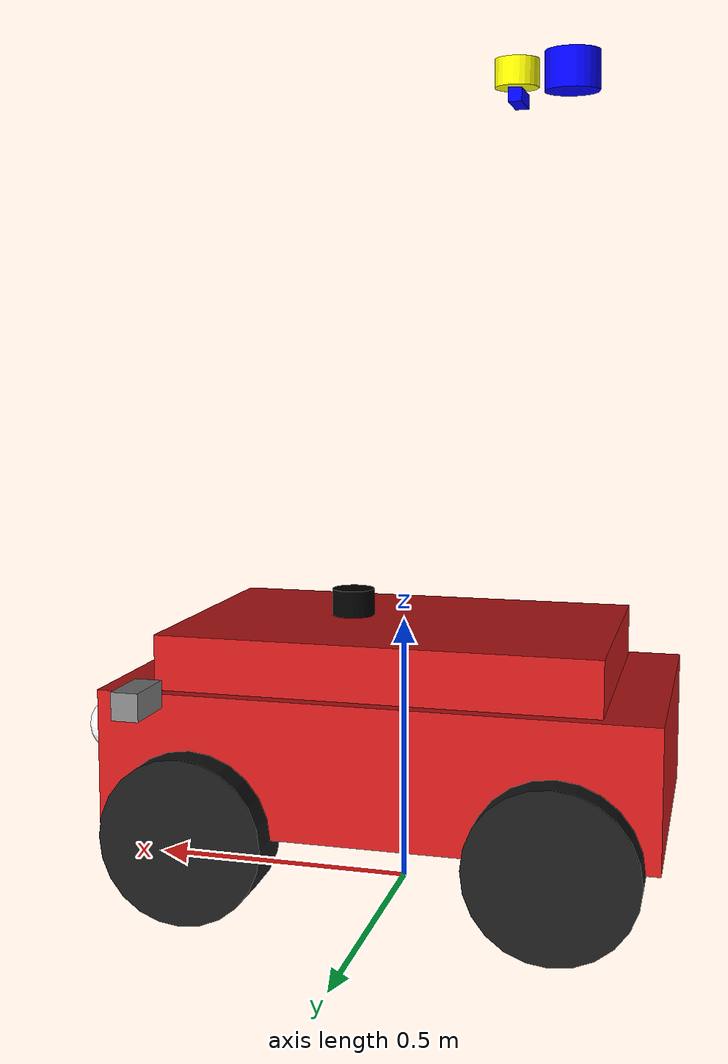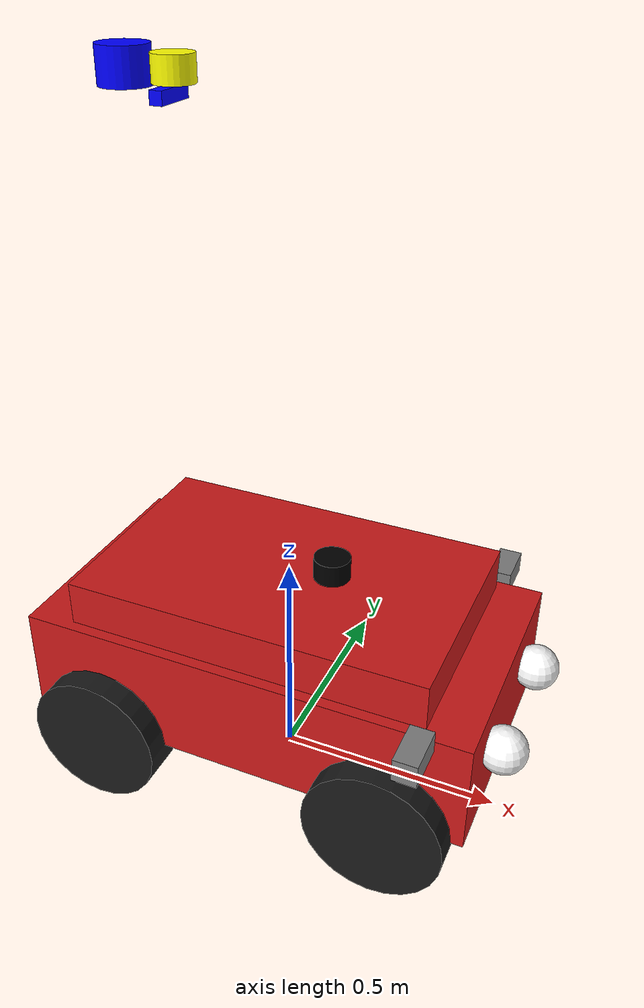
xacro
<?xml version="1.0"?>
<robot name="ttbot" xmlns:xacro="http://www.ros.org/wiki/xacro">

  <xacro:arg name="is_ignition" default="true"/>

  <xacro:include filename="$(find ttbot_description)/urdf/ttbot_gazebo.xacro" />

  <xacro:property name="wheel_radius" value="0.15"/>
  <xacro:property name="wheel_width"  value="0.11"/>
  <xacro:property name="wheelbase"    value="0.65"/>
  <xacro:property name="track_width"  value="0.55"/>
  <xacro:property name="chassis_length" value="1.0"/>
  <xacro:property name="chassis_width"  value="0.55"/>
  <xacro:property name="chassis_height" value="0.25"/>

  <xacro:macro name="inertial_cyl" params="mass r l">
    <inertial>
      <mass value="${mass}"/>
      <origin xyz="0 0 0" rpy="0 0 0"/>
      <inertia ixx="${(1.0/2.0)*mass*r*r}"
               iyy="${(1.0/12.0)*mass*(3*r*r + l*l)}"
               izz="${(1.0/12.0)*mass*(3*r*r + l*l)}"
               ixy="0" ixz="0" iyz="0"/>
    </inertial>
  </xacro:macro>

  <link name="base_link">
    <visual>
      <geometry>
        <box size="${chassis_length} ${chassis_width} ${chassis_height}"/>
      </geometry>
      <origin xyz="0 0 ${wheel_radius + 0.5 * chassis_height}" rpy="0 0 0"/>
      <material name="red"><color rgba="0.8 0.1 0.1 1.0"/></material>
    </visual>

    <visual>
      <origin xyz="0 0 ${wheel_radius + chassis_height}" rpy="0 0 0"/>
      <geometry><box size="0.8 0.5 0.2"/></geometry>
      <material name="darkred"><color rgba="0.8 0.1 0.1 1.0"/></material>
    </visual>

    <visual>
      <origin xyz="0.4 ${0.5*chassis_width + 0.05} ${wheel_radius + chassis_height}"/>
      <geometry><box size="0.05 0.1 0.05"/></geometry>
      <material name="gray"><color rgba="0.5 0.5 0.5 1"/></material>
    </visual>
    <visual>
      <origin xyz="0.4 ${-0.5*chassis_width - 0.05} ${wheel_radius + chassis_height}"/>
      <geometry><box size="0.05 0.1 0.05"/></geometry>
      <material name="gray"><color rgba="0.5 0.5 0.5 1"/></material>
    </visual>

    <visual>
      <origin xyz="${0.5*chassis_length + 0.03} ${0.25*chassis_width} ${wheel_radius + 0.6*chassis_height}"/>
      <geometry><sphere radius="0.05"/></geometry>
      <material name="white"><color rgba="1 1 1 1"/></material>
    </visual>
    <visual>
      <origin xyz="${0.5*chassis_length + 0.03} ${-0.25*chassis_width} ${wheel_radius + 0.6*chassis_height}"/>
      <geometry><sphere radius="0.05"/></geometry>
      <material name="white"><color rgba="1 1 1 1"/></material>
    </visual>

    <collision>
      <origin xyz="0 0 ${wheel_radius + 0.5 * chassis_height}" rpy="0 0 0"/>
      <geometry>
        <box size="${chassis_length} ${chassis_width} ${chassis_height}"/>
      </geometry>
    </collision>

    <inertial>
      <origin xyz="0 0 ${wheel_radius + 0.5 * chassis_height}" rpy="0 0 0"/>
      <mass value="15.0"/>
      <inertia
        ixx="${(1.0/12.0)*15.0*(chassis_width*chassis_width + chassis_height*chassis_height)}"
        iyy="${(1.0/12.0)*15.0*(chassis_length*chassis_length + chassis_height*chassis_height)}"
        izz="${(1.0/12.0)*15.0*(chassis_length*chassis_length + chassis_width*chassis_width)}"
        ixy="0" ixz="0" iyz="0"/>
    </inertial>
  </link>

  <xacro:macro name="wheel_link" params="name">
    <link name="${name}">
      <visual>
        <origin rpy="1.5708 0 0"/>
        <geometry><cylinder radius="${wheel_radius}" length="${wheel_width}"/></geometry>
        <material name="black"><color rgba="0.1 0.1 0.1 1.0"/></material>
      </visual>
      <collision>
        <origin rpy="1.5708 0 0"/>
        <geometry><cylinder radius="${wheel_radius}" length="${wheel_width}"/></geometry>
      </collision>
      <xacro:inertial_cyl mass="1.0" r="${wheel_radius}" l="${wheel_width}"/>
    </link>
  </xacro:macro>

  <link name="front_left_steering_link">
    <collision>
      <origin xyz="0 0 0" rpy="0 0 0"/>
      <geometry>
        <box size="0.01 0.01 0.01"/>
      </geometry>
    </collision>
    <inertial>
      <origin xyz="0 0 0" rpy="0 0 0"/>
      <mass value="0.01"/>
      <inertia
        ixx="1e-6" iyy="1e-6" izz="1e-6"
        ixy="0" ixz="0" iyz="0"/>
    </inertial>
  </link>

  <link name="front_right_steering_link">
    <collision>
      <origin xyz="0 0 0" rpy="0 0 0"/>
      <geometry>
        <box size="0.01 0.01 0.01"/>
      </geometry>
    </collision>
    <inertial>
      <origin xyz="0 0 0" rpy="0 0 0"/>
      <mass value="0.01"/>
      <inertia
        ixx="1e-6" iyy="1e-6" izz="1e-6"
        ixy="0" ixz="0" iyz="0"/>
    </inertial>
  </link>

  <xacro:wheel_link name="front_left_wheel"/>
  <xacro:wheel_link name="front_right_wheel"/>
  <xacro:wheel_link name="rear_left_wheel"/>
  <xacro:wheel_link name="rear_right_wheel"/>

  <!-- ================= JOINTS ================= -->

  <joint name="front_left_steering_joint" type="revolute">
    <parent link="base_link"/>
    <child link="front_left_steering_link"/>
    <origin xyz="${0.5*wheelbase} ${0.5*track_width} ${wheel_radius}" rpy="0 0 0"/>
    <axis xyz="0 0 1"/>
    <limit lower="-0.5236" upper="0.5236" effort="20" velocity="1.0"/>
  </joint>

  <joint name="front_right_steering_joint" type="revolute">
    <parent link="base_link"/>
    <child link="front_right_steering_link"/>
    <origin xyz="${0.5*wheelbase} ${-0.5*track_width} ${wheel_radius}" rpy="0 0 0"/>
    <axis xyz="0 0 1"/>
    <limit lower="-0.5236" upper="0.5236" effort="20" velocity="1.0"/>
    <mimic joint="front_left_steering_joint" multiplier="1.0"/>
  </joint>

  <joint name="front_left_wheel_joint" type="continuous">
    <parent link="front_left_steering_link"/>
    <child link="front_left_wheel"/>
    <origin xyz="0 0 0" rpy="0 0 0"/>
    <axis xyz="0 1 0"/>
  </joint>

  <joint name="front_right_wheel_joint" type="continuous">
    <parent link="front_right_steering_link"/>
    <child link="front_right_wheel"/>
    <origin xyz="0 0 0" rpy="0 0 0"/>
    <axis xyz="0 1 0"/>
  </joint>

  <joint name="rear_left_wheel_joint" type="continuous">
    <parent link="base_link"/>
    <child link="rear_left_wheel"/>
    <origin xyz="${-0.5*wheelbase} ${0.5*track_width} ${wheel_radius}" rpy="0 0 0"/>
    <axis xyz="0 1 0"/>
  </joint>

  <joint name="rear_right_wheel_joint" type="continuous">
    <parent link="base_link"/>
    <child link="rear_right_wheel"/>
    <origin xyz="${-0.5*wheelbase} ${-0.5*track_width} ${wheel_radius}" rpy="0 0 0"/>
    <axis xyz="0 1 0"/>
  </joint>

  <!-- ================= IMU LINK ================= -->
  <link name="imu_link">
    <visual>
      <origin xyz="0 0 0" rpy="0 0 0"/>
      <geometry>
        <cylinder radius="0.04" length="0.05"/>
      </geometry>
      <material name="imu_gray">
        <color rgba="1 1 0 1"/>
      </material>
    </visual>

    <collision>
      <origin xyz="0 0 0" rpy="0 0 0"/>
      <geometry>
        <cylinder radius="0.03" length="0.06"/>
      </geometry>
    </collision>

    <inertial>
      <origin xyz="0 0 0" rpy="0 0 0"/>
      <mass value="0.01"/>
      <inertia
        ixx="1e-6" iyy="1e-6" izz="1e-6"
        ixy="0" ixz="0" iyz="0"/>
    </inertial>
  </link>
  <!-- ================= LIDAR LINK ================= -->
  <link name="lidar_link">
    <visual>
      <origin xyz="0 0 0" rpy="0 0 0"/>
      <geometry>
        <cylinder radius="0.05" length="0.07"/>
      </geometry>
      <material name="lidar_blue">
        <color rgba="0 0 1 1"/>
      </material>
    </visual>
    <collision>
      <origin xyz="0 0 0" rpy="0 0 0"/>
      <geometry>
        <cylinder radius="0.05" length="0.07"/>
      </geometry>
    </collision>
    <inertial>
      <mass value="0.1"/>
      <origin xyz="0 0 0" rpy="0 0 0"/>
      <inertia ixx="0.0001" ixy="0" ixz="0" iyy="0.0001" iyz="0" izz="0.0001"/>
    </inertial>
  </link>

  <!-- ================= LIDAR JOINT ================= -->
  <joint name="lidar_joint" type="fixed">
    <parent link="base_link"/>
    <child link="lidar_link"/>
    <origin xyz="-0.30 -0.03 1.50" rpy="0 0 0"/>
  </joint>

  <!-- ================= IMU JOINT ================= -->
  <joint name="imu_joint" type="fixed">
    <parent link="base_link"/>
    <child link="imu_link"/>
    <origin xyz="-0.20 -0.03 1.50" rpy="0 0 0"/>
  </joint>

  <!-- ================= GPS LINK ================= -->
  <link name="gps_link">
    <visual>
      <origin xyz="0 0 0" rpy="0 0 0"/>
      <geometry>
        <cylinder radius="0.04" length="0.05"/>
      </geometry>
      <material name="gps_black">
        <color rgba="0 0 0 1"/>
      </material>
    </visual>

    <collision>
      <origin xyz="0 0 0" rpy="0 0 0"/>
      <geometry>
        <cylinder radius="0.03" length="0.06"/>
      </geometry>
    </collision>

    <inertial>
      <origin xyz="0 0 0" rpy="0 0 0"/>
      <mass value="0.01"/>
      <inertia
        ixx="1e-6" iyy="1e-6" izz="1e-6"
        ixy="0" ixz="0" iyz="0"/>
    </inertial>
  </link>

  <!-- ================= GPS JOINT ================= -->
  <joint name="gps_joint" type="fixed">
    <parent link="base_link"/>
    <child link="gps_link"/>
    <origin xyz="0.1 0 ${wheel_radius + chassis_height + 0.13}" rpy="0 0 0"/>
    <axis xyz="0 0 0"/>
  </joint>

  <!-- ================= CAMERA LINK ================= -->
  <link name="camera_link">
    <visual>
      <geometry>
        <box size="0.025 0.09 0.025"/>
      </geometry>
      <material name="blue"><color rgba="0 0 1 1"/></material>
    </visual>
    <collision>
      <geometry>
        <box size="0.025 0.09 0.025"/>
      </geometry>
    </collision>
    <inertial>
      <mass value="0.05"/>
      <origin xyz="0 0 0" rpy="0 0 0"/>
      <inertia ixx="1e-6" ixy="0" ixz="0" iyy="1e-6" iyz="0" izz="1e-6"/>
    </inertial>
  </link>

  <joint name="camera_joint" type="fixed">
    <parent link="base_link"/>
    <child link="camera_link"/>
    <origin xyz="-0.20 -0.05 1.46" rpy="0 0 0"/>
  </joint>

  <link name="camera_color_optical_frame"></link>

  <joint name="camera_optical_joint" type="fixed">
    <parent link="camera_link"/>
    <child link="camera_color_optical_frame"/>
    <origin xyz="0 0 0" rpy="-1.57079632679 0 -1.57079632679"/>
  </joint>

  <!-- ================= ROS2_CONTROL ================= -->

  <ros2_control name="ttbot_system" type="system">
    <hardware>
      <xacro:if value="$(arg is_ignition)">
        <plugin>ign_ros2_control/IgnitionSystem</plugin>
      </xacro:if>
      <xacro:unless value="$(arg is_ignition)">
        <plugin>gz_ros2_control/GazeboSystem</plugin>
      </xacro:unless>
    </hardware>

    <joint name="rear_left_wheel_joint">
      <command_interface name="velocity"/>
      <state_interface name="position"/>
      <state_interface name="velocity"/>
    </joint>

    <joint name="rear_right_wheel_joint">
      <command_interface name="velocity"/>
      <state_interface name="position"/>
      <state_interface name="velocity"/>
    </joint>

    <joint name="front_left_steering_joint">
      <command_interface name="position"/>
      <state_interface name="position"/>
      <state_interface name="velocity"/>
    </joint>

    <joint name="front_right_steering_joint">
      <command_interface name="position"/>
      <state_interface name="position"/>
      <state_interface name="velocity"/>
    </joint>

    <joint name="front_left_wheel_joint">
      <state_interface name="position"/>
      <state_interface name="velocity"/>
    </joint>

    <joint name="front_right_wheel_joint">
      <state_interface name="position"/>
      <state_interface name="velocity"/>
    </joint>

  </ros2_control>
  <xacro:ttbot_gazebo/>

</robot>
